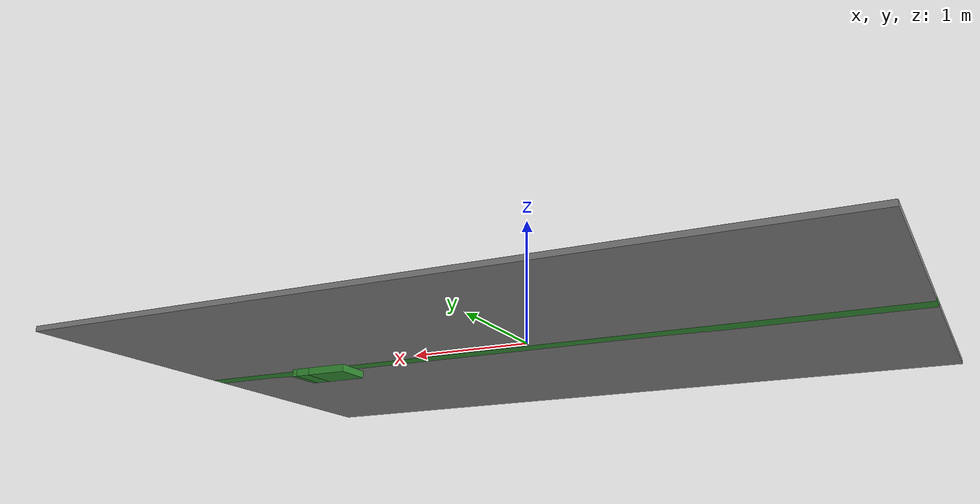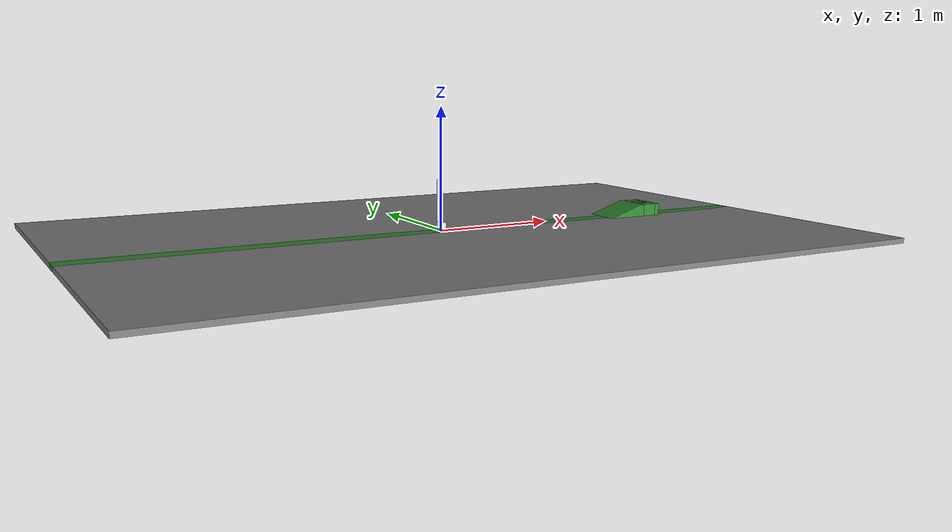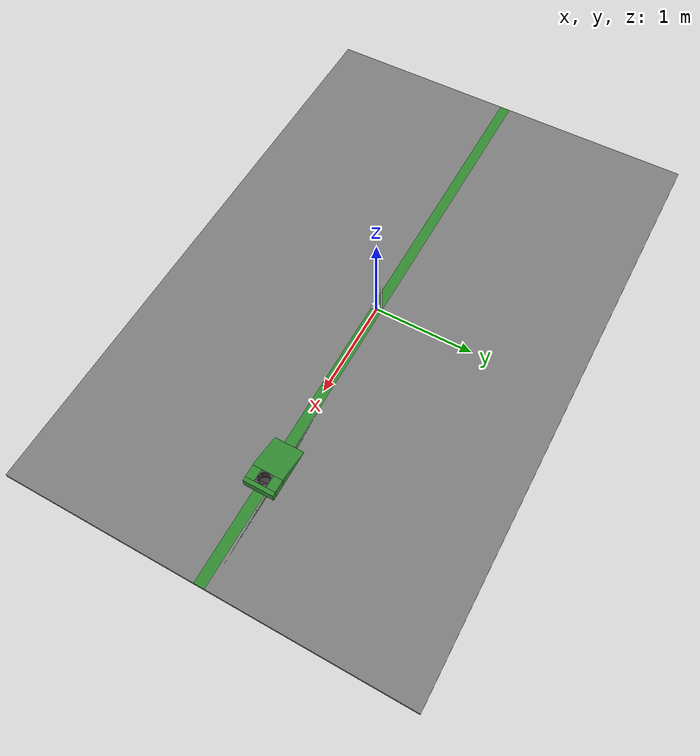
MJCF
<mujoco model="golf_world_elevation">
  <compiler angle="degree"/>
  <option timestep="0.00002" gravity="0 0 -9.81" integrator="RK4"/>

  <default>
    <geom condim="6"/>
  </default>

  <asset>
    <!-- Materials -->
    <material name="green_mat" rgba="0.2 0.55 0.2 1"/>
    <material name="green_mat_out" rgba="0.5 0.5 0.5 1"/>
    <material name="cup_mat"   rgba="0.3 0.3 0.3 1"/>
    <texture name ="checks" type="2d" builtin="checker" width="512" height="512" rgb1="1 1 1" rgb2="0 0 0" mark="cross" markrgb="1 0 0"/>
    <material name="ball_mat"  texture = "checks" rgba="1 1 1 1"/>
    <material name="club_mat"  rgba="0.9 0.9 0.9 1"/>

    <!-- Elevation mound split into 5 convex STL parts (mm -> m scale) -->
    <mesh name="elev_0" file="assets/golf_elevation_stl/golf_elevation_0.stl" scale="0.001 0.001 0.001"/>
    <mesh name="elev_1" file="assets/golf_elevation_stl/golf_elevation_1.stl" scale="0.001 0.001 0.001"/>
    <mesh name="elev_2" file="assets/golf_elevation_stl/golf_elevation_2.stl" scale="0.001 0.001 0.001"/>
    <mesh name="elev_3" file="assets/golf_elevation_stl/golf_elevation_3.stl" scale="0.001 0.001 0.001"/>
    <mesh name="elev_4" file="assets/golf_elevation_stl/golf_elevation_4.stl" scale="0.001 0.001 0.001"/>

    <!-- 27 convex wedges (OBJ). Scale x10 vs earlier (0.01) -->
    <mesh name="cup_w00" file="assets/golf_hole_obj/golf_hole_obj_collision_0.obj"  scale="0.01 0.01 0.01"/>
    <mesh name="cup_w01" file="assets/golf_hole_obj/golf_hole_obj_collision_1.obj"  scale="0.01 0.01 0.01"/>
    <mesh name="cup_w02" file="assets/golf_hole_obj/golf_hole_obj_collision_2.obj"  scale="0.01 0.01 0.01"/>
    <mesh name="cup_w03" file="assets/golf_hole_obj/golf_hole_obj_collision_3.obj"  scale="0.01 0.01 0.01"/>
    <mesh name="cup_w04" file="assets/golf_hole_obj/golf_hole_obj_collision_4.obj"  scale="0.01 0.01 0.01"/>
    <mesh name="cup_w05" file="assets/golf_hole_obj/golf_hole_obj_collision_5.obj"  scale="0.01 0.01 0.01"/>
    <mesh name="cup_w06" file="assets/golf_hole_obj/golf_hole_obj_collision_6.obj"  scale="0.01 0.01 0.01"/>
    <mesh name="cup_w07" file="assets/golf_hole_obj/golf_hole_obj_collision_7.obj"  scale="0.01 0.01 0.01"/>
    <mesh name="cup_w08" file="assets/golf_hole_obj/golf_hole_obj_collision_8.obj"  scale="0.01 0.01 0.01"/>
    <mesh name="cup_w09" file="assets/golf_hole_obj/golf_hole_obj_collision_9.obj"  scale="0.01 0.01 0.01"/>
    <mesh name="cup_w10" file="assets/golf_hole_obj/golf_hole_obj_collision_10.obj" scale="0.01 0.01 0.01"/>
    <mesh name="cup_w11" file="assets/golf_hole_obj/golf_hole_obj_collision_11.obj" scale="0.01 0.01 0.01"/>
    <mesh name="cup_w12" file="assets/golf_hole_obj/golf_hole_obj_collision_12.obj" scale="0.01 0.01 0.01"/>
    <mesh name="cup_w13" file="assets/golf_hole_obj/golf_hole_obj_collision_13.obj" scale="0.01 0.01 0.01"/>
    <mesh name="cup_w14" file="assets/golf_hole_obj/golf_hole_obj_collision_14.obj" scale="0.01 0.01 0.01"/>
    <mesh name="cup_w15" file="assets/golf_hole_obj/golf_hole_obj_collision_15.obj" scale="0.01 0.01 0.01"/>
    <mesh name="cup_w16" file="assets/golf_hole_obj/golf_hole_obj_collision_16.obj" scale="0.01 0.01 0.01"/>
    <mesh name="cup_w17" file="assets/golf_hole_obj/golf_hole_obj_collision_17.obj" scale="0.01 0.01 0.01"/>
    <mesh name="cup_w18" file="assets/golf_hole_obj/golf_hole_obj_collision_18.obj" scale="0.01 0.01 0.01"/>
    <mesh name="cup_w19" file="assets/golf_hole_obj/golf_hole_obj_collision_19.obj" scale="0.01 0.01 0.01"/>
    <mesh name="cup_w20" file="assets/golf_hole_obj/golf_hole_obj_collision_20.obj" scale="0.01 0.01 0.01"/>
    <mesh name="cup_w21" file="assets/golf_hole_obj/golf_hole_obj_collision_21.obj" scale="0.01 0.01 0.01"/>
    <mesh name="cup_w22" file="assets/golf_hole_obj/golf_hole_obj_collision_22.obj" scale="0.01 0.01 0.01"/>
    <mesh name="cup_w23" file="assets/golf_hole_obj/golf_hole_obj_collision_23.obj" scale="0.01 0.01 0.01"/>
    <mesh name="cup_w24" file="assets/golf_hole_obj/golf_hole_obj_collision_24.obj" scale="0.01 0.01 0.01"/>
    <mesh name="cup_w25" file="assets/golf_hole_obj/golf_hole_obj_collision_25.obj" scale="0.01 0.01 0.01"/>
    <mesh name="cup_w26" file="assets/golf_hole_obj/golf_hole_obj_collision_26.obj" scale="0.01 0.01 0.01"/>
  </asset>

  <!-- Coefficient of restitution -->
  <contact>
  <pair geom1="ball_geom" geom2="club_head"
        solref="0.004 0.25"
        solimp="0.95 0.99 0.00108"/>
  </contact>

  <worldbody>
    <!-- ==== GROUND: 6x4 m area, 0.04 m thick, with a 0.106 m opening at (2, 0) ==== -->
    <!-- Top slab (y in [ +0.053, +2 ]) -->
    <geom name="green_top" type="box"
          pos="0 1.0265 -0.02" size="3.0 0.9735 0.02"
          material="green_mat_out" friction="1 0.005 0.00108"/>

    <!-- Bottom slab (y in [ -2, -0.053 ]) -->
    <geom name="green_bottom" type="box"
          pos="0 -1.0265 -0.02" size="3.0 0.9735 0.02"
          material="green_mat_out" friction="1 0.005 0.00108"/>

    <!-- Left slab (x in [ -3, 1.947 ]) -->
    <geom name="green_left" type="box"
          pos="-0.5265 0 -0.02" size="2.4735 0.08 0.02"
          material="green_mat" friction="1 0.005 0.00108"/>

    <!-- Right slab (x in [ 2.053, 3 ]) -->
    <geom name="green_right" type="box"
          pos="2.5265 0 -0.02" size="0.4735 0.08 0.02"
          material="green_mat" friction="1 0.005 0.00108"/>

    <!-- Elevation mesh -->
    <body name="elevation" pos="1.60 0.15 0" quat="0.7071068 0 0 -0.7071068"> <!-- -90° about Z -->
      <geom type="mesh" mesh="elev_0" name="elev_g0" material="green_mat"
            friction="1 0.005 0.00108" contype="1" conaffinity="1"/>
      <geom type="mesh" mesh="elev_1" name="elev_g1" material="green_mat"
            friction="1 0.005 0.00108" contype="1" conaffinity="1"/>
      <geom type="mesh" mesh="elev_2" name="elev_g2" material="green_mat"
            friction="1 0.005 0.00108" contype="1" conaffinity="1"/>
      <geom type="mesh" mesh="elev_3" name="elev_g3" material="green_mat"
            friction="1 0.005 0.00108" contype="1" conaffinity="1"/>
      <geom type="mesh" mesh="elev_4" name="elev_g4" material="green_mat"
            friction="1 0.005 0.00108" contype="1" conaffinity="1"/>
    </body>

    <!-- ==== CUP (27 convex OBJ wedges only; no bottom or extras) ==== -->
    <!-- If your OBJs are centered vertically with height H, change pos to (2 0 -H/2). -->
    <body name="cup" pos="2 0 -0.010665">
      <geom type="mesh" mesh="cup_w00" material="cup_mat" contype="1" conaffinity="1"
            friction="0.6 0.003 0.00108" solref="0.006 0.8" solimp="0.95 0.99 0.002"/>
      <geom type="mesh" mesh="cup_w01" material="cup_mat" contype="1" conaffinity="1"/>
      <geom type="mesh" mesh="cup_w02" material="cup_mat" contype="1" conaffinity="1"/>
      <geom type="mesh" mesh="cup_w03" material="cup_mat" contype="1" conaffinity="1"/>
      <geom type="mesh" mesh="cup_w04" material="cup_mat" contype="1" conaffinity="1"/>
      <geom type="mesh" mesh="cup_w05" material="cup_mat" contype="1" conaffinity="1"/>
      <geom type="mesh" mesh="cup_w06" material="cup_mat" contype="1" conaffinity="1"/>
      <geom type="mesh" mesh="cup_w07" material="cup_mat" contype="1" conaffinity="1"/>
      <geom type="mesh" mesh="cup_w08" material="cup_mat" contype="1" conaffinity="1"/>
      <geom type="mesh" mesh="cup_w09" material="cup_mat" contype="1" conaffinity="1"/>
      <geom type="mesh" mesh="cup_w10" material="cup_mat" contype="1" conaffinity="1"/>
      <geom type="mesh" mesh="cup_w11" material="cup_mat" contype="1" conaffinity="1"/>
      <geom type="mesh" mesh="cup_w12" material="cup_mat" contype="1" conaffinity="1"/>
      <geom type="mesh" mesh="cup_w13" material="cup_mat" contype="1" conaffinity="1"/>
      <geom type="mesh" mesh="cup_w14" material="cup_mat" contype="1" conaffinity="1"/>
      <geom type="mesh" mesh="cup_w15" material="cup_mat" contype="1" conaffinity="1"/>
      <geom type="mesh" mesh="cup_w16" material="cup_mat" contype="1" conaffinity="1"/>
      <geom type="mesh" mesh="cup_w17" material="cup_mat" contype="1" conaffinity="1"/>
      <geom type="mesh" mesh="cup_w18" material="cup_mat" contype="1" conaffinity="1"/>
      <geom type="mesh" mesh="cup_w19" material="cup_mat" contype="1" conaffinity="1"/>
      <geom type="mesh" mesh="cup_w20" material="cup_mat" contype="1" conaffinity="1"/>
      <geom type="mesh" mesh="cup_w21" material="cup_mat" contype="1" conaffinity="1"/>
      <geom type="mesh" mesh="cup_w22" material="cup_mat" contype="1" conaffinity="1"/>
      <geom type="mesh" mesh="cup_w23" material="cup_mat" contype="1" conaffinity="1"/>
      <geom type="mesh" mesh="cup_w24" material="cup_mat" contype="1" conaffinity="1"/>
      <geom type="mesh" mesh="cup_w25" material="cup_mat" contype="1" conaffinity="1"/>
      <geom type="mesh" mesh="cup_w26" material="cup_mat" contype="1" conaffinity="1"/>

      <!-- Keep the site for logic/debug -->
      <site name="hole_center" pos="0 0 0" size="0.055" rgba="0 0 0 0.2" type="sphere"/>
    </body>

    <!-- ==== BALL ==== -->
    <camera name="overview" pos="2.0 -3.0 1.5" quat="0.7 0.0 0.7 0.0" fovy="45"/>
    <body name="ball" pos="0 0 0.02135">
      <freejoint name="ball_free"/>
      <geom name="ball_geom" type="sphere" size="0.02135"
            rgba="0.6 0.2 0.6 1" mass="0.04593" material="ball_mat"
            solref="0.005 1" solimp="0.95 0.99 0.001"
            friction="0.6 0.0001 0.000108" condim="6"/>
    </body>

    <!-- ==== CLUB ==== -->
    <body name="club_mount" pos="0 0 0.02135">
      <joint name="mount_free" type="free" damping="20"/>
      <geom name="mount_inert" type="sphere" size="0.10" mass="5.0"
            rgba="0 0 0 0" contype="0" conaffinity="0"/>

      <body name="club_offset" pos="0.0 0.05 0.37865">
        <body name="club_link" pos="0 0 0">
          <joint name="club_hinge" type="hinge" axis="0 1 0" limited="true" range="-60 60" damping="0.1"/>
          <geom name="club_shaft" type="capsule" fromto="0 0 0  0 0 -0.36" size="0.01" mass="1.0" material="club_mat"/>
          <geom name="club_head"  type="box"    pos="0.0 -0.05 -0.36" size="0.02 0.05 0.03" mass="0.5" material="club_mat"/>
        </body>
      </body>
    </body>
  </worldbody>

  <!-- ==== ACTUATOR ==== -->
  <actuator>
    <velocity name="club_motor" joint="club_hinge" kv="100" ctrlrange="-10 10"/>
  </actuator>
</mujoco>
